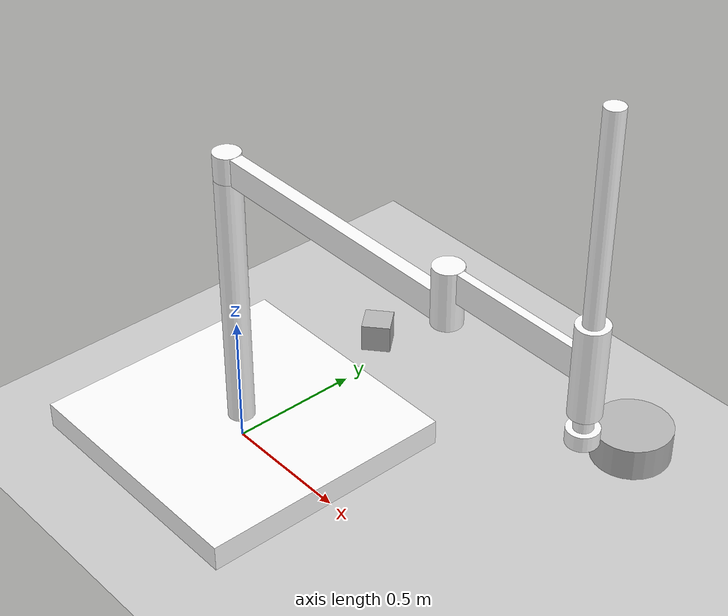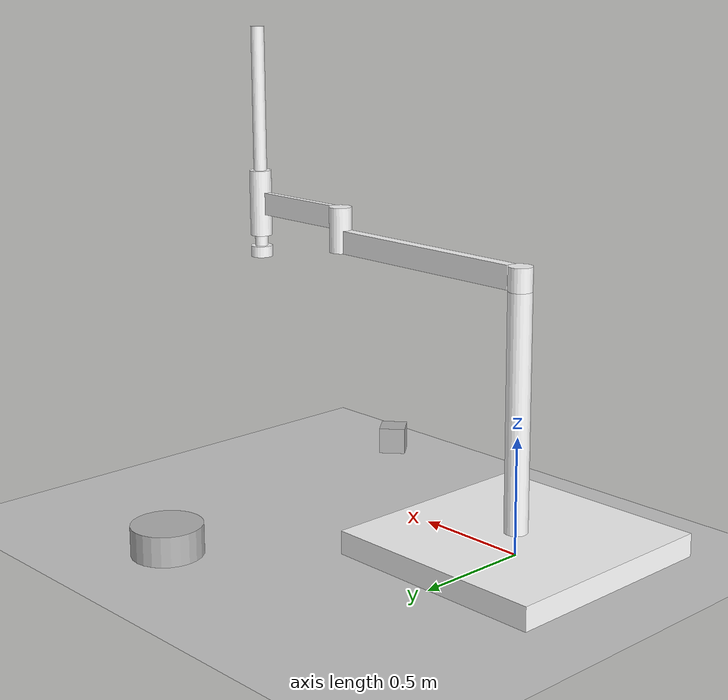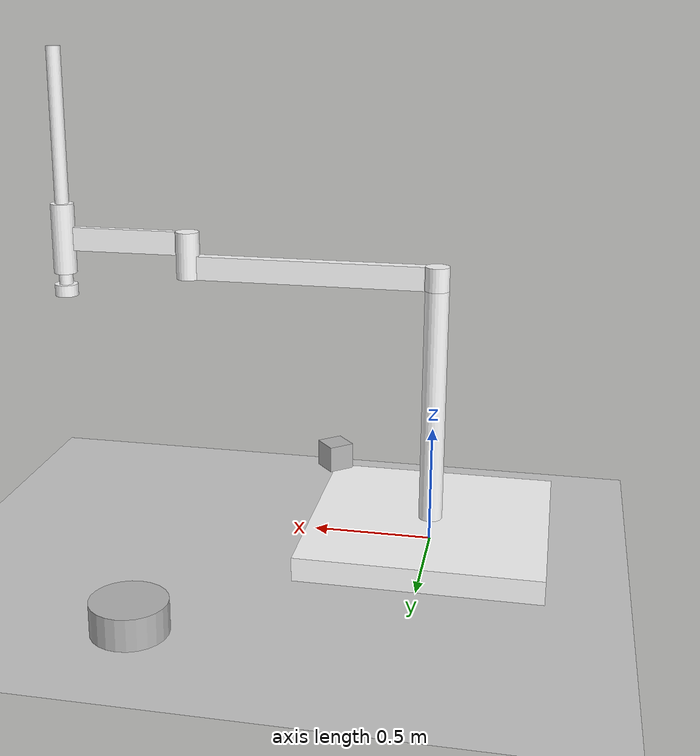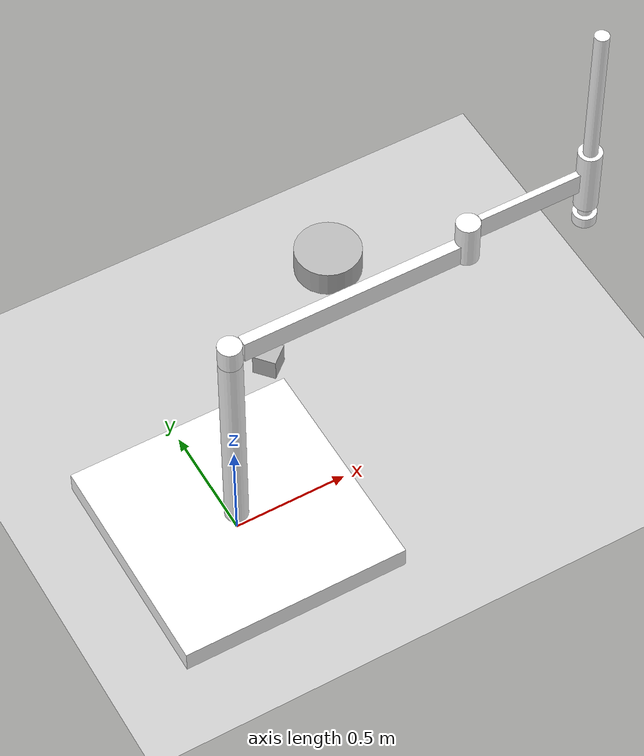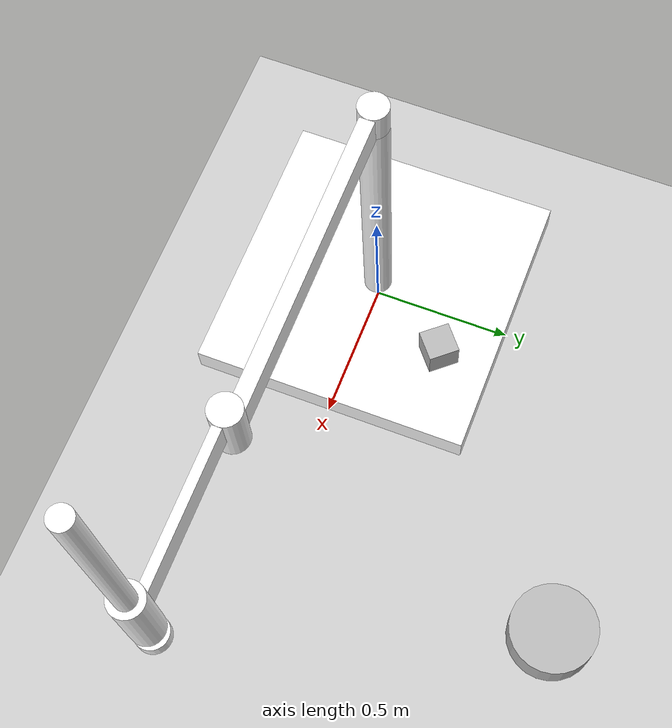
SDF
<sdf version="1.5">
 <world name="default">
  <include><uri>model://sun</uri></include>
  <include><uri>model://ground_plane</uri></include>
  <include><uri>model://simple_arm</uri></include>
  <model name="cylinder">
   <pose>1.0 1.0 0 0 0 0</pose>
   <link name="base">
    <visual name="cylinder_visual">
     <geometry><cylinder><radius>0.15</radius><length>0.25</length></cylinder></geometry>
    </visual>
    <collision name="cylinder_collision">
     <geometry><cylinder><radius>0.15</radius><length>0.25</length></cylinder></geometry>
    </collision>
   </link>
  </model>
  <include><pose>0.35 0.35 0.5 0 0 0.7071</pose><uri>model://camera</uri></include>
 </world>
</sdf>

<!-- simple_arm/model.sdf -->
<sdf version="1.5">
  <model name="simple_arm">
    <link name="arm_base">
      <inertial>
        <pose>0 0 0.00099 0 0 0</pose>
        <inertia>
          <ixx>1.11</ixx>
          <ixy>0</ixy>
          <ixz>0</ixz>
          <iyy>100.11</iyy>
          <iyz>0</iyz>
          <izz>1.01</izz>
        </inertia>
        <mass>101.0</mass>
      </inertial>
      <collision name="arm_base_geom">
        <pose>0 0 0.05 0 0 0</pose>
        <geometry>
          <box>
            <size>1.0 1.0 0.1</size>
          </box>
        </geometry>
      </collision>
      <visual name="arm_base_geom_visual">
        <pose>0 0 0.05 0 0 0</pose>
        <geometry>
          <box>
            <size>1.0 1.0 0.1</size>
          </box>
        </geometry>
        <material><diffuse>1 1 1 1</diffuse><specular>0.1 0.1 0.1 1</specular></material>
      </visual>
      <collision name="arm_base_geom_arm_trunk">
        <pose>0 0 0.6 0 0 0</pose>
        <geometry>
          <cylinder>
            <radius>0.05</radius>
            <length>1.0</length>
          </cylinder>
        </geometry>
      </collision>
      <visual name="arm_base_geom_arm_trunk_visual">
        <pose>0 0 0.6 0 0 0</pose>
        <geometry>
          <cylinder>
            <radius>0.05</radius>
            <length>1.0</length>
          </cylinder>
        </geometry>
        <material><diffuse>1 1 1 1</diffuse><specular>0.1 0.1 0.1 1</specular></material>
      </visual>
    </link>
    <link name="arm_shoulder_pan">
      <pose>0 0 1.1 0 0 0</pose>
      <inertial>
        <pose>0.045455 0 0 0 0 0</pose>
        <inertia>
          <ixx>0.011</ixx>
          <ixy>0</ixy>
          <ixz>0</ixz>
          <iyy>0.0225</iyy>
          <iyz>0</iyz>
          <izz>0.0135</izz>
        </inertia>
        <mass>1.1</mass>
      </inertial>
      <collision name="arm_shoulder_pan_geom">
        <pose>0 0 0.05 0 0 0</pose>
        <geometry>
          <cylinder>
            <radius>0.05</radius>
            <length>0.1</length>
          </cylinder>
        </geometry>
      </collision>
      <visual name="arm_shoulder_pan_geom_visual">
        <pose>0 0 0.05 0 0 0</pose>
        <geometry>
          <cylinder>
            <radius>0.05</radius>
            <length>0.1</length>
          </cylinder>
        </geometry>
        <material><diffuse>1 1 1 1</diffuse><specular>0.1 0.1 0.1 1</specular></material>
      </visual>
      <collision name="arm_shoulder_pan_geom_arm_shoulder">
        <pose>0.55 0 0.05 0 0 0</pose>
        <geometry>
          <box>
            <size>1.0 0.05 0.1</size>
          </box>
        </geometry>
      </collision>
      <visual name="arm_shoulder_pan_geom_arm_shoulder_visual">
        <pose>0.55 0 0.05 0 0 0</pose>
        <geometry>
          <box>
            <size>1.0 0.05 0.1</size>
          </box>
        </geometry>
        <material><diffuse>1 1 1 1</diffuse><specular>0.1 0.1 0.1 1</specular></material>
      </visual>
    </link>
    <link name="arm_elbow_pan">
      <pose>1.05 0 1.1 0 0 0</pose>
      <inertial>
        <pose>0.0875 0 0.083333 0 0 0</pose>
        <inertia>
          <ixx>0.031</ixx>
          <ixy>0</ixy>
          <ixz>0.005</ixz>
          <iyy>0.07275</iyy>
          <iyz>0</iyz>
          <izz>0.04475</izz>
        </inertia>
        <mass>1.2</mass>
      </inertial>
      <collision name="arm_elbow_pan_geom">
        <pose>0 0 0.1 0 0 0</pose>
        <geometry>
          <cylinder>
            <radius>0.05</radius>
            <length>0.2</length>
          </cylinder>
        </geometry>
      </collision>
      <visual name="arm_elbow_pan_geom_visual">
        <pose>0 0 0.1 0 0 0</pose>
        <geometry>
          <cylinder>
            <radius>0.05</radius>
            <length>0.2</length>
          </cylinder>
        </geometry>
        <material><diffuse>1 1 1 1</diffuse><specular>0.1 0.1 0.1 1</specular></material>
      </visual>
      <collision name="arm_elbow_pan_geom_arm_elbow">
        <pose>0.3 0 0.15 0 0 0</pose>
        <geometry>
          <box>
            <size>0.5 0.03 0.1</size>
          </box>
        </geometry>
      </collision>
      <visual name="arm_elbow_pan_geom_arm_elbow_visual">
        <pose>0.3 0 0.15 0 0 0</pose>
        <geometry>
          <box>
            <size>0.5 0.03 0.1</size>
          </box>
        </geometry>
        <material><diffuse>1 1 1 1</diffuse><specular>0.1 0.1 0.1 1</specular></material>
      </visual>
      <collision name="arm_elbow_pan_geom_arm_wrist">
        <pose>0.55 0 0.15 0 0 0</pose>
        <geometry>
          <cylinder>
            <radius>0.05</radius>
            <length>0.3</length>
          </cylinder>
        </geometry>
      </collision>
      <visual name="arm_elbow_pan_geom_arm_wrist_visual">
        <pose>0.55 0 0.15 0 0 0</pose>
        <geometry>
          <cylinder>
            <radius>0.05</radius>
            <length>0.3</length>
          </cylinder>
        </geometry>
        <material><diffuse>1 1 1 1</diffuse><specular>0.1 0.1 0.1 1</specular></material>
      </visual>
    </link>
    <link name="arm_wrist_lift">
      <pose>1.6 0 1.05 0 0 0</pose>
      <inertial>
        <pose>0 0 0 0 0 0</pose>
        <inertia>
          <ixx>0.01</ixx>
          <ixy>0</ixy>
          <ixz>0</ixz>
          <iyy>0.01</iyy>
          <iyz>0</iyz>
          <izz>0.001</izz>
        </inertia>
        <mass>0.1</mass>
      </inertial>
      <collision name="arm_wrist_lift_geom">
        <pose>0 0 0.5 0 0 0</pose>
        <geometry>
          <cylinder>
            <radius>0.03</radius>
            <length>1.0</length>
          </cylinder>
        </geometry>
      </collision>
      <visual name="arm_wrist_lift_geom_visual">
        <pose>0 0 0.5 0 0 0</pose>
        <geometry>
          <cylinder>
            <radius>0.03</radius>
            <length>1.0</length>
          </cylinder>
        </geometry>
        <material><diffuse>1 1 1 1</diffuse><specular>0.1 0.1 0.1 1</specular></material>
      </visual>
    </link>
    <link name="arm_wrist_roll">
      <pose>1.6 0 1.0 0 0 0</pose>
      <inertial>
        <pose>0 0 0 0 0 0</pose>
        <inertia>
          <ixx>0.01</ixx>
          <ixy>0</ixy>
          <ixz>0</ixz>
          <iyy>0.01</iyy>
          <iyz>0</iyz>
          <izz>0.001</izz>
        </inertia>
        <mass>0.1</mass>
      </inertial>
      <collision name="arm_wrist_roll_geom">
        <pose>0 0 0.025 0 0 0</pose>
        <geometry>
          <cylinder>
            <radius>0.05</radius>
            <length>0.05</length>
          </cylinder>
        </geometry>
      </collision>
      <visual name="arm_wrist_roll_geom_visual">
        <pose>0 0 0.025 0 0 0</pose>
        <geometry>
          <cylinder>
            <radius>0.05</radius>
            <length>0.05</length>
          </cylinder>
        </geometry>
        <material><diffuse>1 1 1 1</diffuse><specular>0.1 0.1 0.1 1</specular></material>
      </visual>
    </link>
    <joint name="arm_shoulder_pan_joint" type="revolute">
      <parent>arm_base</parent>
      <child>arm_shoulder_pan</child>
      <axis>
        <dynamics>
          <damping>1.000000</damping>
          <friction>0.000000</friction>
        </dynamics>
        <xyz>0 0 1</xyz>
        <use_parent_model_frame>true</use_parent_model_frame>
      </axis>
    </joint>
    <joint name="arm_elbow_pan_joint" type="revolute">
      <parent>arm_shoulder_pan</parent>
      <child>arm_elbow_pan</child>
      <axis>
        <dynamics>
          <damping>1.000000</damping>
          <friction>0.000000</friction>
        </dynamics>
        <xyz>0 0 1</xyz>
        <use_parent_model_frame>true</use_parent_model_frame>
      </axis>
    </joint>
    <joint name="arm_wrist_lift_joint" type="prismatic">
      <parent>arm_elbow_pan</parent>
      <child>arm_wrist_lift</child>
      <axis>
        <dynamics>
          <damping>1.000000</damping>
          <friction>0.000000</friction>
        </dynamics>
        <limit>
          <lower>-0.8</lower>
          <upper>0.1</upper>
        </limit>
        <xyz>0 0 1</xyz>
        <use_parent_model_frame>true</use_parent_model_frame>
      </axis>
    </joint>
    <joint name="arm_wrist_roll_joint" type="revolute">
      <parent>arm_wrist_lift</parent>
      <child>arm_wrist_roll</child>
      <axis>
        <dynamics>
          <damping>1.000000</damping>
          <friction>0.000000</friction>
        </dynamics>
        <limit>
          <lower>-2.999994</lower>
          <upper>2.999994</upper>
        </limit>
        <xyz>0 0 1</xyz>
        <use_parent_model_frame>true</use_parent_model_frame>
      </axis>
    </joint>
  </model>
</sdf>

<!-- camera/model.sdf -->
<sdf version="1.5">
  <model name="camera">
    <pose>0 0 0.05 0 0 0</pose>
    <link name="link">
      <inertial>
        <mass>0.1</mass>
        <inertia>
          <ixx>0.000166667</ixx>
          <iyy>0.000166667</iyy>
          <izz>0.000166667</izz>
        </inertia>
      </inertial>
      <collision name="collision">
        <geometry>
          <box>
            <size>0.1 0.1 0.1</size>
          </box>
        </geometry>
      </collision>
      <visual name="visual">
        <geometry>
          <box>
            <size>0.1 0.1 0.1</size>
          </box>
        </geometry>
      </visual>
      <sensor name="camera" type="camera">
        <camera>
          <horizontal_fov>1.047</horizontal_fov>
          <image>
            <width>320</width>
            <height>240</height>
          </image>
          <clip>
            <near>0.1</near>
            <far>100</far>
          </clip>
        </camera>
        <always_on>1</always_on>
        <update_rate>30</update_rate>
        <visualize>true</visualize>
      </sensor>
    </link>
  </model>
</sdf>
